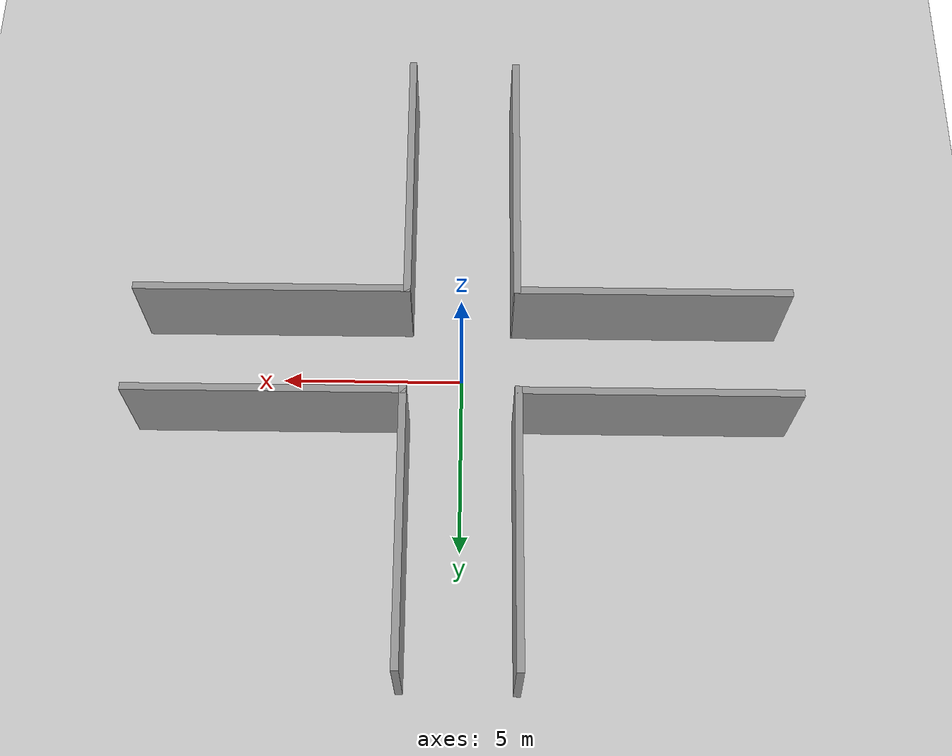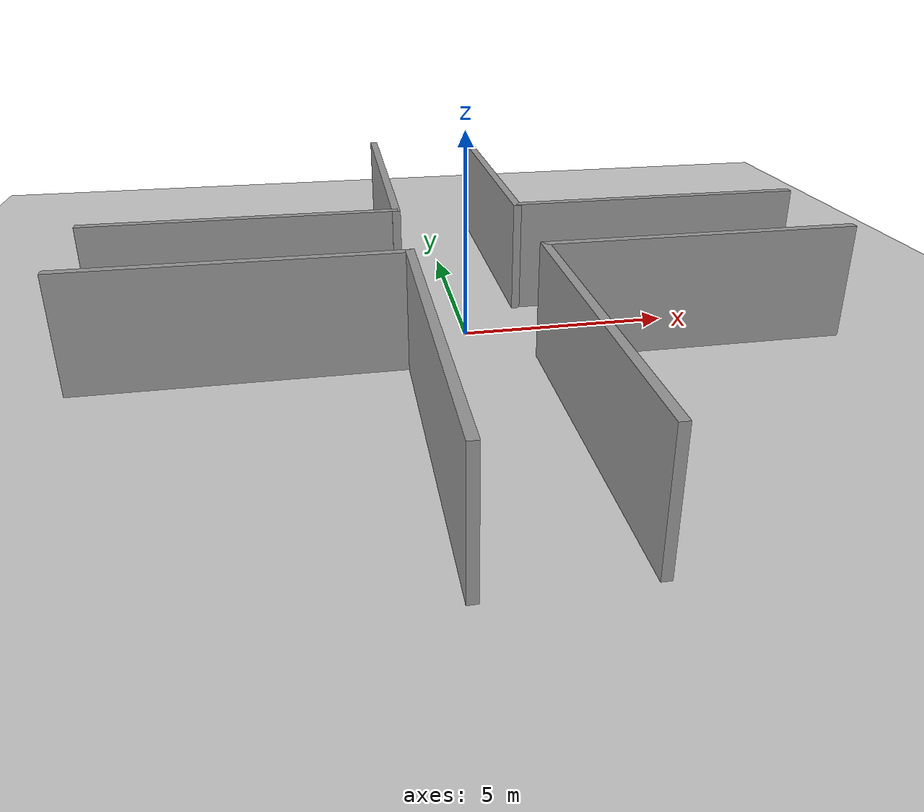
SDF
<sdf version='1.6'>
  <world name='default'>
    <light name='sun' type='directional'>
      <cast_shadows>1</cast_shadows>
      <pose frame=''>0 0 10 0 -0 0</pose>
      <diffuse>0.8 0.8 0.8 1</diffuse>
      <specular>0.1 0.1 0.1 1</specular>
      <attenuation>
        <range>1000</range>
        <constant>0.9</constant>
        <linear>0.01</linear>
        <quadratic>0.001</quadratic>
      </attenuation>
      <direction>-0.5 0.5 -1</direction>
    </light>
    <model name='ground_plane'>
      <static>1</static>
      <link name='link'>
        <collision name='collision'>
          <geometry>
            <plane>
              <normal>0 0 1</normal>
              <size>100 100</size>
            </plane>
          </geometry>
          <surface>
            <friction>
              <ode>
                <mu>100</mu>
                <mu2>50</mu2>
              </ode>
              <torsional>
                <ode/>
              </torsional>
            </friction>
            <contact>
              <ode/>
            </contact>
            <bounce/>
          </surface>
          <max_contacts>10</max_contacts>
        </collision>
        <visual name='visual'>
          <cast_shadows>0</cast_shadows>
          <geometry>
            <plane>
              <normal>0 0 1</normal>
              <size>100 100</size>
            </plane>
          </geometry>
          <material>
            <script>
              <uri>file://media/materials/scripts/gazebo.material</uri>
              <name>Gazebo/Grey</name>
            </script>
          </material>
        </visual>
        <self_collide>0</self_collide>
        <enable_wind>0</enable_wind>
        <kinematic>0</kinematic>
      </link>
    </model>
    <gravity>0 0 -9.8</gravity>
    <magnetic_field>6e-06 2.3e-05 -4.2e-05</magnetic_field>
    <atmosphere type='adiabatic'/>
    <physics name='default_physics' default='0' type='ode'>
      <max_step_size>0.001</max_step_size>
      <real_time_factor>1</real_time_factor>
      <real_time_update_rate>1000</real_time_update_rate>
    </physics>
    <scene>
      <ambient>0.4 0.4 0.4 1</ambient>
      <background>0.7 0.7 0.7 1</background>
      <shadows>1</shadows>
    </scene>
    <wind/>
    <spherical_coordinates>
      <surface_model>EARTH_WGS84</surface_model>
      <latitude_deg>0</latitude_deg>
      <longitude_deg>0</longitude_deg>
      <elevation>0</elevation>
      <heading_deg>0</heading_deg>
    </spherical_coordinates>
    <model name='grey_wall'>
      <static>1</static>
      <link name='link'>
        <pose frame=''>0 0 1.4 0 -0 0</pose>
        <collision name='collision'>
          <geometry>
            <box>
              <size>7.5 0.2 2.8</size>
            </box>
          </geometry>
          <max_contacts>10</max_contacts>
          <surface>
            <contact>
              <ode/>
            </contact>
            <bounce/>
            <friction>
              <torsional>
                <ode/>
              </torsional>
              <ode/>
            </friction>
          </surface>
        </collision>
        <visual name='visual'>
          <cast_shadows>0</cast_shadows>
          <geometry>
            <box>
              <size>7.5 0.2 2.8</size>
            </box>
          </geometry>
          <material>
            <script>
              <uri>model://grey_wall/materials/scripts</uri>
              <uri>model://grey_wall/materials/textures</uri>
              <name>vrc/grey_wall</name>
            </script>
          </material>
        </visual>
        <self_collide>0</self_collide>
        <enable_wind>0</enable_wind>
        <kinematic>0</kinematic>
      </link>
      <pose frame=''>-5.20786 1.42337 0 0 -0 0</pose>
    </model>
    <model name='grey_wall_0'>
      <static>1</static>
      <link name='link'>
        <pose frame=''>0 0 1.4 0 -0 0</pose>
        <collision name='collision'>
          <geometry>
            <box>
              <size>7.5 0.2 2.8</size>
            </box>
          </geometry>
          <max_contacts>10</max_contacts>
          <surface>
            <contact>
              <ode/>
            </contact>
            <bounce/>
            <friction>
              <torsional>
                <ode/>
              </torsional>
              <ode/>
            </friction>
          </surface>
        </collision>
        <visual name='visual'>
          <cast_shadows>0</cast_shadows>
          <geometry>
            <box>
              <size>7.5 0.2 2.8</size>
            </box>
          </geometry>
          <material>
            <script>
              <uri>model://grey_wall/materials/scripts</uri>
              <uri>model://grey_wall/materials/textures</uri>
              <name>vrc/grey_wall</name>
            </script>
          </material>
        </visual>
        <self_collide>0</self_collide>
        <enable_wind>0</enable_wind>
        <kinematic>0</kinematic>
      </link>
      <pose frame=''>-5.15118 -1.51807 0 0 -0 0</pose>
    </model>
    <model name='grey_wall_1_clone'>
      <static>1</static>
      <link name='link'>
        <pose frame=''>0 0 1.4 0 -0 0</pose>
        <collision name='collision'>
          <geometry>
            <box>
              <size>7.5 0.2 2.8</size>
            </box>
          </geometry>
          <max_contacts>10</max_contacts>
          <surface>
            <contact>
              <ode/>
            </contact>
            <bounce/>
            <friction>
              <torsional>
                <ode/>
              </torsional>
              <ode/>
            </friction>
          </surface>
        </collision>
        <visual name='visual'>
          <cast_shadows>0</cast_shadows>
          <geometry>
            <box>
              <size>7.5 0.2 2.8</size>
            </box>
          </geometry>
          <material>
            <script>
              <uri>model://grey_wall/materials/scripts</uri>
              <uri>model://grey_wall/materials/textures</uri>
              <name>vrc/grey_wall</name>
            </script>
          </material>
        </visual>
        <self_collide>0</self_collide>
        <enable_wind>0</enable_wind>
        <kinematic>0</kinematic>
      </link>
      <pose frame=''>1.52754 5.03788 0 0 -0 1.57336</pose>
    </model>
    <model name='grey_wall_1_clone_0'>
      <static>1</static>
      <link name='link'>
        <pose frame=''>0 0 1.4 0 -0 0</pose>
        <collision name='collision'>
          <geometry>
            <box>
              <size>7.5 0.2 2.8</size>
            </box>
          </geometry>
          <max_contacts>10</max_contacts>
          <surface>
            <contact>
              <ode/>
            </contact>
            <bounce/>
            <friction>
              <torsional>
                <ode/>
              </torsional>
              <ode/>
            </friction>
          </surface>
        </collision>
        <visual name='visual'>
          <cast_shadows>0</cast_shadows>
          <geometry>
            <box>
              <size>7.5 0.2 2.8</size>
            </box>
          </geometry>
          <material>
            <script>
              <uri>model://grey_wall/materials/scripts</uri>
              <uri>model://grey_wall/materials/textures</uri>
              <name>vrc/grey_wall</name>
            </script>
          </material>
        </visual>
        <self_collide>0</self_collide>
        <enable_wind>0</enable_wind>
        <kinematic>0</kinematic>
      </link>
      <pose frame=''>-1.46092 -5.17451 0 0 -0 1.57336</pose>
    </model>
    <model name='grey_wall_1_clone_1'>
      <static>1</static>
      <link name='link'>
        <pose frame=''>0 0 1.4 0 -0 0</pose>
        <collision name='collision'>
          <geometry>
            <box>
              <size>7.5 0.2 2.8</size>
            </box>
          </geometry>
          <max_contacts>10</max_contacts>
          <surface>
            <contact>
              <ode/>
            </contact>
            <bounce/>
            <friction>
              <torsional>
                <ode/>
              </torsional>
              <ode/>
            </friction>
          </surface>
        </collision>
        <visual name='visual'>
          <cast_shadows>0</cast_shadows>
          <geometry>
            <box>
              <size>7.5 0.2 2.8</size>
            </box>
          </geometry>
          <material>
            <script>
              <uri>model://grey_wall/materials/scripts</uri>
              <uri>model://grey_wall/materials/textures</uri>
              <name>vrc/grey_wall</name>
            </script>
          </material>
        </visual>
        <self_collide>0</self_collide>
        <enable_wind>0</enable_wind>
        <kinematic>0</kinematic>
      </link>
      <pose frame=''>1.51061 -5.20366 0 0 -0 1.57336</pose>
    </model>
    <model name='grey_wall_clone'>
      <static>1</static>
      <link name='link'>
        <pose frame=''>0 0 1.4 0 -0 0</pose>
        <collision name='collision'>
          <geometry>
            <box>
              <size>7.5 0.2 2.8</size>
            </box>
          </geometry>
          <max_contacts>10</max_contacts>
          <surface>
            <contact>
              <ode/>
            </contact>
            <bounce/>
            <friction>
              <torsional>
                <ode/>
              </torsional>
              <ode/>
            </friction>
          </surface>
        </collision>
        <visual name='visual'>
          <cast_shadows>0</cast_shadows>
          <geometry>
            <box>
              <size>7.5 0.2 2.8</size>
            </box>
          </geometry>
          <material>
            <script>
              <uri>model://grey_wall/materials/scripts</uri>
              <uri>model://grey_wall/materials/textures</uri>
              <name>vrc/grey_wall</name>
            </script>
          </material>
        </visual>
        <self_collide>0</self_collide>
        <enable_wind>0</enable_wind>
        <kinematic>0</kinematic>
      </link>
      <pose frame=''>5.19573 1.42925 0 0 -0 0</pose>
    </model>
    <model name='grey_wall_clone_0'>
      <static>1</static>
      <link name='link'>
        <pose frame=''>0 0 1.4 0 -0 0</pose>
        <collision name='collision'>
          <geometry>
            <box>
              <size>7.5 0.2 2.8</size>
            </box>
          </geometry>
          <max_contacts>10</max_contacts>
          <surface>
            <contact>
              <ode/>
            </contact>
            <bounce/>
            <friction>
              <torsional>
                <ode/>
              </torsional>
              <ode/>
            </friction>
          </surface>
        </collision>
        <visual name='visual'>
          <cast_shadows>0</cast_shadows>
          <geometry>
            <box>
              <size>7.5 0.2 2.8</size>
            </box>
          </geometry>
          <material>
            <script>
              <uri>model://grey_wall/materials/scripts</uri>
              <uri>model://grey_wall/materials/textures</uri>
              <name>vrc/grey_wall</name>
            </script>
          </material>
        </visual>
        <self_collide>0</self_collide>
        <enable_wind>0</enable_wind>
        <kinematic>0</kinematic>
      </link>
      <pose frame=''>5.16626 -1.54276 0 0 -0 0</pose>
    </model>
    <gui fullscreen='0'>
      <camera name='user_camera'>
        <pose frame=''>-0.390634 -0.376585 36.7726 -7e-06 1.5698 1.09222</pose>
        <view_controller>orbit</view_controller>
        <projection_type>perspective</projection_type>
      </camera>
    </gui>
    <model name='grey_wall_1_clone_clone'>
      <static>1</static>
      <link name='link'>
        <pose frame=''>0 0 1.4 0 -0 0</pose>
        <collision name='collision'>
          <geometry>
            <box>
              <size>7.5 0.2 2.8</size>
            </box>
          </geometry>
          <max_contacts>10</max_contacts>
          <surface>
            <contact>
              <ode/>
            </contact>
            <bounce/>
            <friction>
              <torsional>
                <ode/>
              </torsional>
              <ode/>
            </friction>
          </surface>
        </collision>
        <visual name='visual'>
          <cast_shadows>0</cast_shadows>
          <geometry>
            <box>
              <size>7.5 0.2 2.8</size>
            </box>
          </geometry>
          <material>
            <script>
              <uri>model://grey_wall/materials/scripts</uri>
              <uri>model://grey_wall/materials/textures</uri>
              <name>vrc/grey_wall</name>
            </script>
          </material>
        </visual>
        <self_collide>0</self_collide>
        <enable_wind>0</enable_wind>
        <kinematic>0</kinematic>
      </link>
      <pose frame=''>-1.50499 5.05639 0 0 -0 1.57336</pose>
    </model>
  </world>
</sdf>
